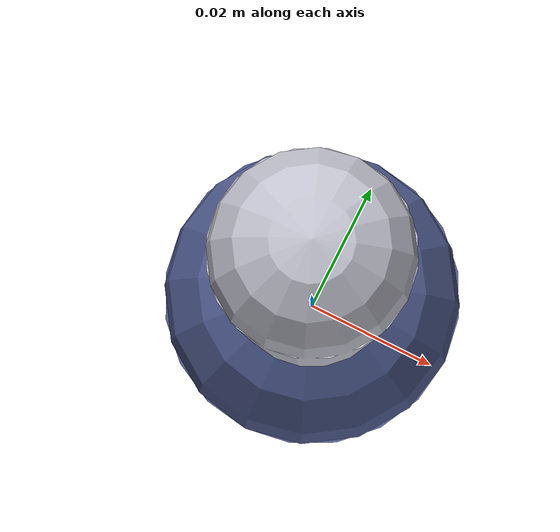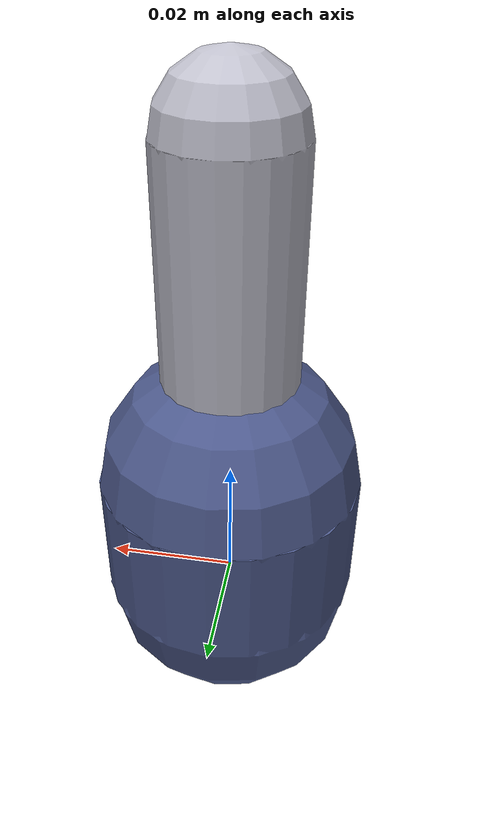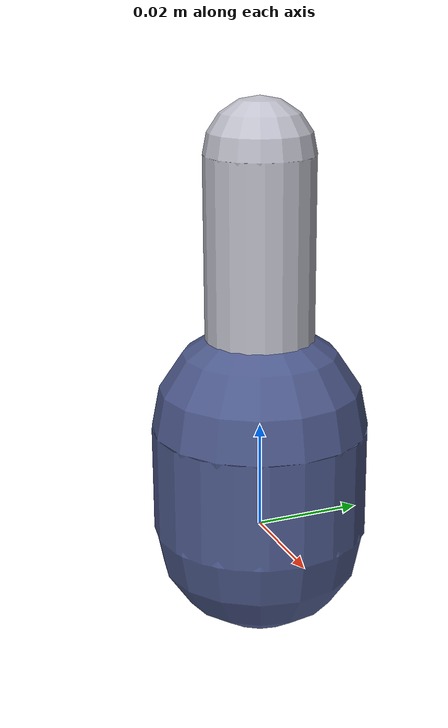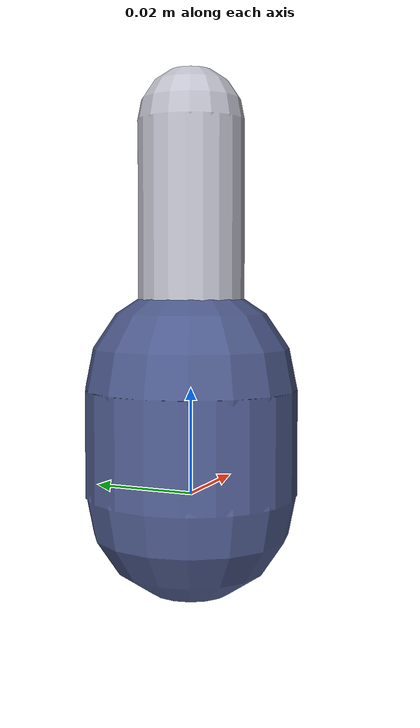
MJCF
<mujoco model="insertion_peg">
    <compiler angle="radian" autolimits="true" />
    <default>
        <default class="visual">
            <geom contype="0" conaffinity="0" group="2" />
        </default>
        <default class="peg_collision">
            <geom condim="4" friction="0.4 0.01 0.0002" solref="0.010 1.2"
                solimp="0.9 0.95 0.002" margin="0.001" group="3" priority="1" />
        </default>
    </default>

    <asset>
        <material name="peg_housing" rgba="0.30 0.35 0.55 1" reflectance="0.1" />
        <material name="peg_shaft" rgba="0.75 0.75 0.80 1" reflectance="0.2" />
    </asset>

    <worldbody>
        <body name="base">
            <site name="mount" group="3" />
            <site name="ft_sensor_site" group="3" />

            <!-- Housing stub between the UR5e flange and the peg shaft -
                 visual only (contype/conaffinity 0), same convention as
                 sander.xml's housing capsule. -->
            <geom name="peg_housing_visual" class="visual" type="capsule"
                material="peg_housing" size="0.020" fromto="0 0 0.0 0 0 0.02" />

            <geom name="peg_shaft_visual" class="visual" type="capsule"
                material="peg_shaft" size="0.010" fromto="0 0 0.02 0 0 0.07" />
            <geom name="peg_shaft_collision" type="capsule" class="peg_collision"
                size="0.010" fromto="0 0 0.02 0 0 0.07" />

            <inertial pos="0 0 0.045" mass="0.30" diaginertia="0.0003 0.0003 0.00006" />

            <site name="planner_tip_site" group="3" pos="0 0 0.07" />
            <site name="end_effector" group="3" pos="0 0 0.07" />

            <camera name="wrist_cam" pos="0 0.08 0.0" xyaxes="1 0 0 0 -0.5 -0.87" />
        </body>
    </worldbody>

    <sensor>
        <force name="wrist_force_sensor" site="ft_sensor_site" />
        <torque name="wrist_torque_sensor" site="ft_sensor_site" />
    </sensor>
</mujoco>
